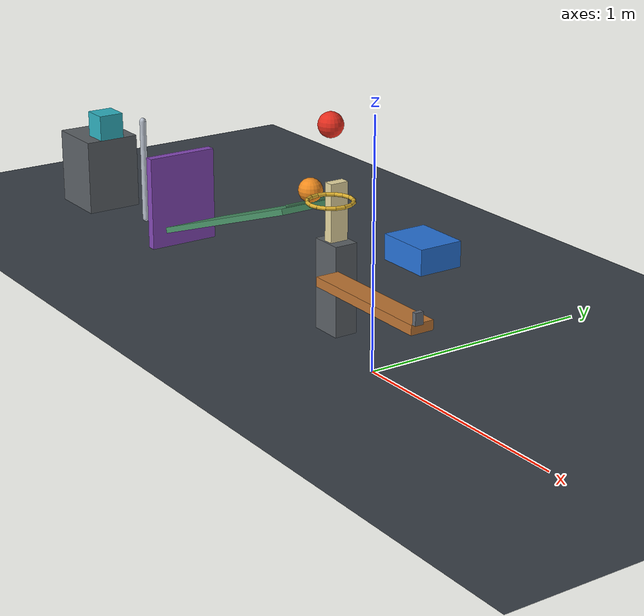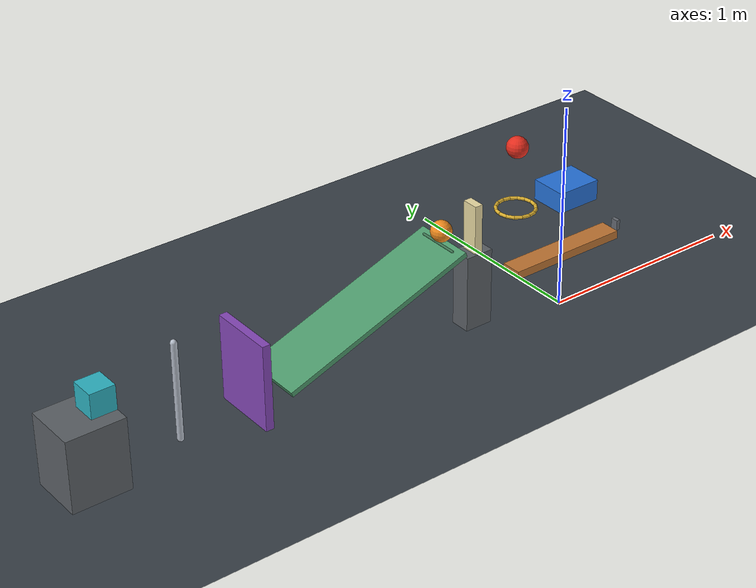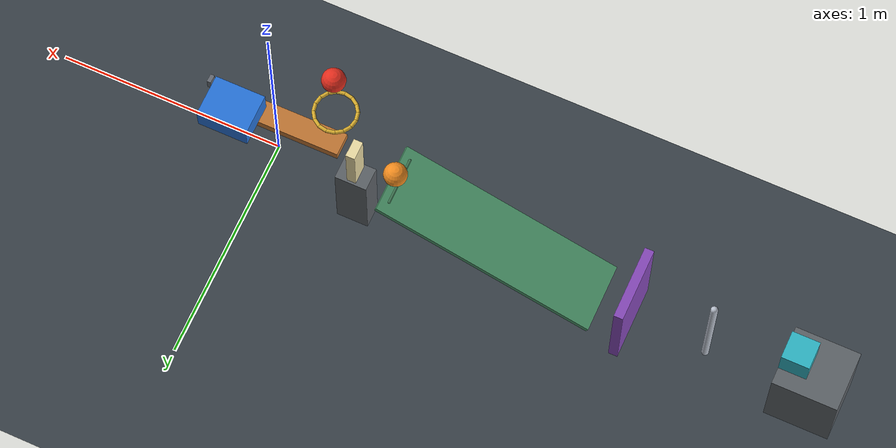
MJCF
<mujoco model="gravity_chain_clear_final_strokes">
  <compiler angle="degree" autolimits="true" inertiafromgeom="true"/>
  <option timestep="0.002" gravity="0 0 -9.81" integrator="implicitfast" cone="elliptic" iterations="100" tolerance="1e-9"/>
  <size njmax="3000" nconmax="500"/>
  <statistic center="-1.0 0.1 0.45" extent="2.5"/>

  <visual>
    <global azimuth="110" elevation="-20"/>
    <headlight ambient="0.4 0.4 0.4" diffuse="0.7 0.7 0.7" specular="0.2 0.2 0.2"/>
  </visual>

  <worldbody>
    <light name="main_light" pos="-0.8 -1.5 4" dir="0 0 -1"/>
    <camera name="overview" pos="-1.0 3.8 2.1" xyaxes="-1 0 0 0 -0.4 0.916515"/>

    <!-- Sliding friction is 0.72; small rolling resistance allows the balls to settle.
         Compliant-contact damping approximates restitution 0.04. -->
    <geom name="floor" type="plane" size="5 5 0.1" friction="0.72 0.005 0.001" condim="6" solref="0.006 0.7156" solimp="0.95 0.99 0.001" rgba="0.22 0.25 0.28 1"/>

    <!-- Minimum horizontal clear diameter is approximately 0.16 m. -->
    <body name="ring1" pos="-0.28 0 0.60">
      <geom name="ring1_00" type="capsule" fromto="0.089724 0 0 0.082894 0.034336 0" size="0.008" friction="0.72 0.005 0.001" solref="0.006 0.7156" rgba="0.85 0.68 0.18 1"/>
      <geom name="ring1_01" type="capsule" fromto="0.082894 0.034336 0 0.063445 0.063445 0" size="0.008" friction="0.72 0.005 0.001" solref="0.006 0.7156" rgba="0.85 0.68 0.18 1"/>
      <geom name="ring1_02" type="capsule" fromto="0.063445 0.063445 0 0.034336 0.082894 0" size="0.008" friction="0.72 0.005 0.001" solref="0.006 0.7156" rgba="0.85 0.68 0.18 1"/>
      <geom name="ring1_03" type="capsule" fromto="0.034336 0.082894 0 0 0.089724 0" size="0.008" friction="0.72 0.005 0.001" solref="0.006 0.7156" rgba="0.85 0.68 0.18 1"/>
      <geom name="ring1_04" type="capsule" fromto="0 0.089724 0 -0.034336 0.082894 0" size="0.008" friction="0.72 0.005 0.001" solref="0.006 0.7156" rgba="0.85 0.68 0.18 1"/>
      <geom name="ring1_05" type="capsule" fromto="-0.034336 0.082894 0 -0.063445 0.063445 0" size="0.008" friction="0.72 0.005 0.001" solref="0.006 0.7156" rgba="0.85 0.68 0.18 1"/>
      <geom name="ring1_06" type="capsule" fromto="-0.063445 0.063445 0 -0.082894 0.034336 0" size="0.008" friction="0.72 0.005 0.001" solref="0.006 0.7156" rgba="0.85 0.68 0.18 1"/>
      <geom name="ring1_07" type="capsule" fromto="-0.082894 0.034336 0 -0.089724 0 0" size="0.008" friction="0.72 0.005 0.001" solref="0.006 0.7156" rgba="0.85 0.68 0.18 1"/>
      <geom name="ring1_08" type="capsule" fromto="-0.089724 0 0 -0.082894 -0.034336 0" size="0.008" friction="0.72 0.005 0.001" solref="0.006 0.7156" rgba="0.85 0.68 0.18 1"/>
      <geom name="ring1_09" type="capsule" fromto="-0.082894 -0.034336 0 -0.063445 -0.063445 0" size="0.008" friction="0.72 0.005 0.001" solref="0.006 0.7156" rgba="0.85 0.68 0.18 1"/>
      <geom name="ring1_10" type="capsule" fromto="-0.063445 -0.063445 0 -0.034336 -0.082894 0" size="0.008" friction="0.72 0.005 0.001" solref="0.006 0.7156" rgba="0.85 0.68 0.18 1"/>
      <geom name="ring1_11" type="capsule" fromto="-0.034336 -0.082894 0 0 -0.089724 0" size="0.008" friction="0.72 0.005 0.001" solref="0.006 0.7156" rgba="0.85 0.68 0.18 1"/>
      <geom name="ring1_12" type="capsule" fromto="0 -0.089724 0 0.034336 -0.082894 0" size="0.008" friction="0.72 0.005 0.001" solref="0.006 0.7156" rgba="0.85 0.68 0.18 1"/>
      <geom name="ring1_13" type="capsule" fromto="0.034336 -0.082894 0 0.063445 -0.063445 0" size="0.008" friction="0.72 0.005 0.001" solref="0.006 0.7156" rgba="0.85 0.68 0.18 1"/>
      <geom name="ring1_14" type="capsule" fromto="0.063445 -0.063445 0 0.082894 -0.034336 0" size="0.008" friction="0.72 0.005 0.001" solref="0.006 0.7156" rgba="0.85 0.68 0.18 1"/>
      <geom name="ring1_15" type="capsule" fromto="0.082894 -0.034336 0 0.089724 0 0" size="0.008" friction="0.72 0.005 0.001" solref="0.006 0.7156" rgba="0.85 0.68 0.18 1"/>
    </body>

    <!-- Initial ball center is 0.30 m above the ring.
         Initial lever contact puts its center 0.25 m below the ring. -->
    <body name="ball1" pos="-0.28 0 0.90">
      <freejoint name="ball1_free"/>
      <geom name="ball1_sphere" type="sphere" size="0.05" mass="0.20" friction="0.72 0.005 0.001" condim="6" solref="0.006 0.7156" solimp="0.95 0.99 0.001" rgba="0.90 0.18 0.12 1"/>
    </body>

    <!-- A weighted latch holds the preloaded spring until ball impact initiates release. -->
    <body name="lever1" pos="0 0 0.28">
      <joint name="lever1_hinge" type="hinge" axis="0 -1 0" range="0 45" damping="0.04" stiffness="0.50" springref="90" solreflimit="0.004 0.7156" solimplimit="0.95 0.99 0.001"/>
      <geom name="lever1_bar" type="box" size="0.30 0.05 0.02" mass="0.50" friction="0.72 0.005 0.001" condim="6" solref="0.006 0.7156" solimp="0.95 0.99 0.001" rgba="0.75 0.46 0.20 1"/>
    </body>

    <body name="lever_latch" pos="0.308 -0.027 0.325">
      <joint name="lever_latch_slide" type="slide" axis="0 0 1" range="-0.300 0.150" damping="0.20" solreflimit="0.004 0.7156" solimplimit="0.95 0.99 0.001"/>
      <geom name="lever_latch_weight" type="box" size="0.009 0.018 0.025" mass="0.35" friction="0.72 0.005 0.001" condim="6" solref="0.006 0.7156" solimp="0.95 0.99 0.001" rgba="0.40 0.42 0.45 1"/>
    </body>

    <!-- Initial cart-to-domino face separation is 0.42 m. -->
    <body name="cart1" pos="0.13 0.125 0.50">
      <joint name="cart1_slide" type="slide" axis="-1 0 0" range="0 0.46" damping="0.20" solreflimit="0.004 0.7156" solimplimit="0.95 0.99 0.001"/>
      <geom name="cart1_box" type="box" size="0.11 0.09 0.05" mass="0.50" friction="0.72 0.005 0.001" condim="6" solref="0.006 0.7156" solimp="0.95 0.99 0.001" rgba="0.15 0.45 0.85 1"/>
    </body>

    <body name="domino_support" pos="-0.42 0.125 0.19">
      <geom name="domino_support_box" type="box" size="0.07 0.05 0.19" friction="0.72 0.005 0.001" condim="6" solref="0.006 0.7156" solimp="0.95 0.99 0.001" rgba="0.36 0.38 0.40 1"/>
    </body>

    <body name="domino1" pos="-0.42 0.125 0.50">
      <freejoint name="domino1_free"/>
      <geom name="domino1_box" type="box" size="0.02 0.04 0.12" mass="0.25" friction="0.72 0.005 0.001" condim="6" solref="0.006 0.7156" solimp="0.95 0.99 0.001" rgba="0.92 0.86 0.64 1"/>
    </body>

    <!-- Ramp deck is 1.00 m by 0.30 m at 20 degrees, with low top edge z=0.15.
         The transverse lip retains ball2 before domino contact. -->
    <body name="ramp1" pos="-1.048471 0.125 0.309264" euler="0 -20 0">
      <geom name="ramp1_deck" type="box" size="0.50 0.15 0.0125" friction="0.72 0.005 0.001" condim="6" solref="0.006 0.7156" solimp="0.95 0.99 0.001" rgba="0.30 0.60 0.42 1"/>
      <geom name="ramp1_start_lip" type="capsule" fromto="0.465359 -0.10 0.0185 0.465359 0.10 0.0185" size="0.006" friction="0.72 0.005 0.001" condim="6" solref="0.006 0.7156" solimp="0.95 0.99 0.001" rgba="0.24 0.46 0.32 1"/>
    </body>

    <!-- Horizontal center spacing from domino1 is approximately 0.18 m. -->
    <body name="ball2" pos="-0.600001 0.125 0.539005">
      <freejoint name="ball2_free"/>
      <geom name="ball2_sphere" type="sphere" size="0.05" mass="0.20" friction="0.72 0.005 0.001" condim="6" solref="0.006 0.7156" solimp="0.95 0.99 0.001" rgba="0.95 0.55 0.12 1"/>
    </body>

    <!-- Ramp low edge to initial door near face: 0.10 m horizontally.
         The initially upright panel is bottom-hinged. -->
    <body name="door1" pos="-1.642592 0.125 0.02">
      <joint name="door1_hinge" type="hinge" axis="0 -1 0" range="0 70" damping="0.04" solreflimit="0.004 0.7156" solimplimit="0.95 0.99 0.001"/>
      <geom name="door1_panel" type="box" pos="0 0 0.21" size="0.02 0.16 0.21" mass="0.45" friction="0.72 0.005 0.001" condim="6" solref="0.006 0.7156" solimp="0.95 0.99 0.001" rgba="0.52 0.28 0.72 1"/>
    </body>

    <!-- Initially upright inverted rigid pendulum, overall length 0.50 m.
         Shifted 20 mm farther from the door to clear the final door stroke. -->
    <body name="pendulum1" pos="-1.982592 0.125 0.025">
      <joint name="pendulum1_hinge" type="hinge" axis="0 -1 0" range="0 38" damping="0.04" solreflimit="0.004 0.7156" solimplimit="0.95 0.99 0.001"/>
      <geom name="pendulum1_rod" type="capsule" fromto="0 0 0.015 0 0 0.485" size="0.015" mass="0.35" friction="0.72 0.005 0.001" condim="6" solref="0.006 0.7156" solimp="0.95 0.99 0.001" rgba="0.72 0.75 0.80 1"/>
    </body>

    <!-- Support right edge equals the block's right face, avoiding the pendulum approach.
         Support and block are shifted with the pendulum to preserve contact geometry. -->
    <body name="block_support" pos="-2.434188 0.125 0.175">
      <geom name="block_support_box" type="box" size="0.14 0.13 0.175" friction="0.72 0.005 0.001" condim="6" solref="0.006 0.7156" solimp="0.95 0.99 0.001" rgba="0.36 0.38 0.40 1"/>
    </body>

    <!-- Distal capsule contact occurs just before the 38-degree stop. -->
    <body name="block1" pos="-2.354188 0.125 0.41">
      <freejoint name="block1_free"/>
      <geom name="block1_cube" type="box" size="0.06 0.06 0.06" mass="0.35" friction="0.72 0.005 0.001" condim="6" solref="0.006 0.7156" solimp="0.95 0.99 0.001" rgba="0.18 0.70 0.76 1"/>
    </body>
  </worldbody>

  <!-- Modeled initial positions, zero generalized velocities, and no actuators. -->
  <keyframe>
    <key name="start" time="0"/>
  </keyframe>
</mujoco>
